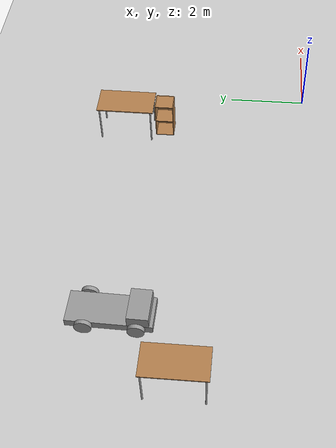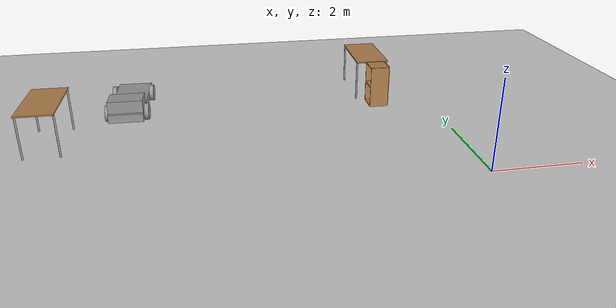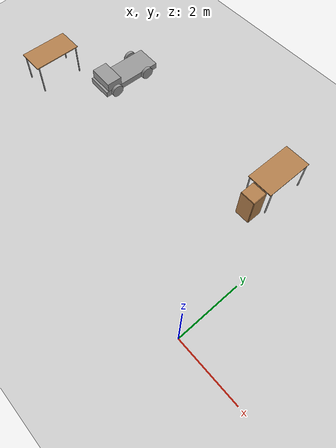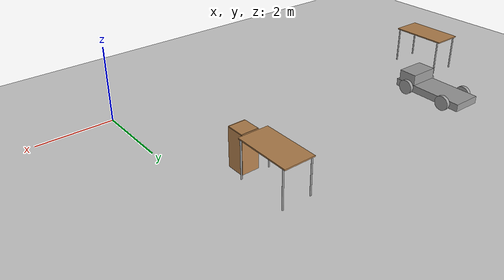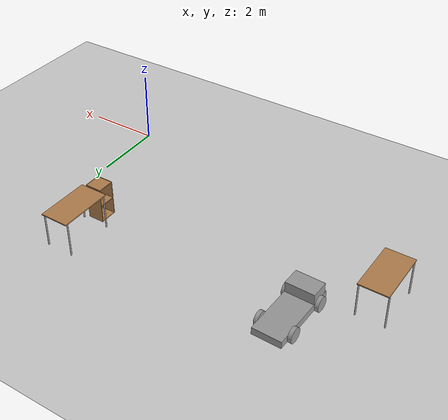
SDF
<sdf version="1.6">
 <world name="default">
  <model name="ground_plane">
   <static>1</static>
   <link name="link">
    <collision name="collision">
     <geometry><plane><normal>0 0 1</normal><size>100 100</size></plane></geometry>
     <surface><friction><ode><mu>100</mu><mu2>50</mu2></ode></friction></surface>
    </collision>
    <visual name="visual">
     <cast_shadows>0</cast_shadows>
     <geometry><plane><normal>0 0 1</normal><size>100 100</size></plane></geometry>
     <material>
      <script><uri>file://media/materials/scripts/gazebo.material</uri><name>Gazebo/Grey</name></script>
     </material>
    </visual>
   </link>
  </model>
  <model name="table">
   <static>1</static>
   <link name="link">
    <collision name="surface">
     <pose>0 0 1 0 -0 0</pose>
     <geometry><box><size>1.5 0.8 0.03</size></box></geometry>
     <surface><friction><ode><mu>0.6</mu><mu2>0.6</mu2></ode></friction></surface>
    </collision>
    <visual name="visual1">
     <pose>0 0 1 0 -0 0</pose>
     <geometry><box><size>1.5 0.8 0.03</size></box></geometry>
     <material>
      <script><uri>file://media/materials/scripts/gazebo.material</uri><name>Gazebo/Wood</name></script>
     </material>
    </visual>
    <collision name="front_left_leg">
     <pose>0.68 0.38 0.5 0 -0 0</pose>
     <geometry><cylinder><radius>0.02</radius><length>1</length></cylinder></geometry>
    </collision>
    <visual name="front_left_leg">
     <pose>0.68 0.38 0.5 0 -0 0</pose>
     <geometry><cylinder><radius>0.02</radius><length>1</length></cylinder></geometry>
     <material>
      <script><uri>file://media/materials/scripts/gazebo.material</uri><name>Gazebo/Grey</name></script>
     </material>
    </visual>
    <collision name="front_right_leg">
     <pose>0.68 -0.38 0.5 0 -0 0</pose>
     <geometry><cylinder><radius>0.02</radius><length>1</length></cylinder></geometry>
    </collision>
    <visual name="front_right_leg">
     <pose>0.68 -0.38 0.5 0 -0 0</pose>
     <geometry><cylinder><radius>0.02</radius><length>1</length></cylinder></geometry>
     <material>
      <script><uri>file://media/materials/scripts/gazebo.material</uri><name>Gazebo/Grey</name></script>
     </material>
    </visual>
    <collision name="back_right_leg">
     <pose>-0.68 -0.38 0.5 0 -0 0</pose>
     <geometry><cylinder><radius>0.02</radius><length>1</length></cylinder></geometry>
    </collision>
    <visual name="back_right_leg">
     <pose>-0.68 -0.38 0.5 0 -0 0</pose>
     <geometry><cylinder><radius>0.02</radius><length>1</length></cylinder></geometry>
     <material>
      <script><uri>file://media/materials/scripts/gazebo.material</uri><name>Gazebo/Grey</name></script>
     </material>
    </visual>
    <collision name="back_left_leg">
     <pose>-0.68 0.38 0.5 0 -0 0</pose>
     <geometry><cylinder><radius>0.02</radius><length>1</length></cylinder></geometry>
    </collision>
    <visual name="back_left_leg">
     <pose>-0.68 0.38 0.5 0 -0 0</pose>
     <geometry><cylinder><radius>0.02</radius><length>1</length></cylinder></geometry>
     <material>
      <script><uri>file://media/materials/scripts/gazebo.material</uri><name>Gazebo/Grey</name></script>
     </material>
    </visual>
   </link>
   <pose>-1.36641 4.79092 0 0 0 -1.57662</pose>
  </model>
  <model name="table_clone_0">
   <static>1</static>
   <link name="link">
    <collision name="surface">
     <pose>0 0 1 0 -0 0</pose>
     <geometry><box><size>1.5 0.8 0.03</size></box></geometry>
     <surface><friction><ode><mu>0.6</mu><mu2>0.6</mu2></ode></friction></surface>
    </collision>
    <visual name="visual1">
     <pose>0 0 1 0 -0 0</pose>
     <geometry><box><size>1.5 0.8 0.03</size></box></geometry>
     <material>
      <script><uri>file://media/materials/scripts/gazebo.material</uri><name>Gazebo/Wood</name></script>
     </material>
    </visual>
    <collision name="front_left_leg">
     <pose>0.68 0.38 0.5 0 -0 0</pose>
     <geometry><cylinder><radius>0.02</radius><length>1</length></cylinder></geometry>
    </collision>
    <visual name="front_left_leg">
     <pose>0.68 0.38 0.5 0 -0 0</pose>
     <geometry><cylinder><radius>0.02</radius><length>1</length></cylinder></geometry>
     <material>
      <script><uri>file://media/materials/scripts/gazebo.material</uri><name>Gazebo/Grey</name></script>
     </material>
    </visual>
    <collision name="front_right_leg">
     <pose>0.68 -0.38 0.5 0 -0 0</pose>
     <geometry><cylinder><radius>0.02</radius><length>1</length></cylinder></geometry>
    </collision>
    <visual name="front_right_leg">
     <pose>0.68 -0.38 0.5 0 -0 0</pose>
     <geometry><cylinder><radius>0.02</radius><length>1</length></cylinder></geometry>
     <material>
      <script><uri>file://media/materials/scripts/gazebo.material</uri><name>Gazebo/Grey</name></script>
     </material>
    </visual>
    <collision name="back_right_leg">
     <pose>-0.68 -0.38 0.5 0 -0 0</pose>
     <geometry><cylinder><radius>0.02</radius><length>1</length></cylinder></geometry>
    </collision>
    <visual name="back_right_leg">
     <pose>-0.68 -0.38 0.5 0 -0 0</pose>
     <geometry><cylinder><radius>0.02</radius><length>1</length></cylinder></geometry>
     <material>
      <script><uri>file://media/materials/scripts/gazebo.material</uri><name>Gazebo/Grey</name></script>
     </material>
    </visual>
    <collision name="back_left_leg">
     <pose>-0.68 0.38 0.5 0 -0 0</pose>
     <geometry><cylinder><radius>0.02</radius><length>1</length></cylinder></geometry>
    </collision>
    <visual name="back_left_leg">
     <pose>-0.68 0.38 0.5 0 -0 0</pose>
     <geometry><cylinder><radius>0.02</radius><length>1</length></cylinder></geometry>
     <material>
      <script><uri>file://media/materials/scripts/gazebo.material</uri><name>Gazebo/Grey</name></script>
     </material>
    </visual>
   </link>
   <pose>-9.02047 2.75404 0 0 0 -1.57662</pose>
  </model>
  <model name="miniTruck_0">
   <link name="link_0">
    <pose>0.132505 7.5e-05 0.142204 0 -0 0</pose>
    <inertial>
     <mass>1.05911</mass>
     <inertia>
      <ixx>0.187261</ixx>
      <ixy>0</ixy>
      <ixz>0</ixz>
      <iyy>0.176519</iyy>
      <iyz>0</iyz>
      <izz>0.187261</izz>
     </inertia>
    </inertial>
    <visual name="visual">
     <pose>0 0 -0.3 0 -0 0</pose>
     <geometry><box><size>2 0.8 0.2</size></box></geometry>
     <material>
      <lighting>1</lighting>
      <script><uri>file://media/materials/scripts/gazebo.material</uri><name>Gazebo/Grey</name></script>
      <shader type="pixel"><normal_map>__default__</normal_map></shader>
      <ambient>0.3 0.3 0.3 1</ambient>
      <diffuse>0.7 0.7 0.7 1</diffuse>
      <specular>0.01 0.01 0.01 1</specular>
      <emissive>0 0 0 1</emissive>
     </material>
    </visual>
    <collision name="collision">
     <pose>0 0 -0.3 0 -0 0</pose>
     <geometry><box><size>2 0.8 0.2</size></box></geometry>
     <surface>
      <friction>
       <ode><mu>1</mu><mu2>1</mu2><fdir1>0 0 0</fdir1><slip1>0</slip1><slip2>0</slip2></ode>
       <torsional>
        <coefficient>1</coefficient>
        <patch_radius>0</patch_radius>
        <surface_radius>0</surface_radius>
        <use_patch_radius>1</use_patch_radius>
        <ode><slip>0</slip></ode>
       </torsional>
      </friction>
      <bounce><restitution_coefficient>0</restitution_coefficient><threshold>1e+06</threshold></bounce>
      <contact>
       <collide_without_contact>0</collide_without_contact>
       <collide_without_contact_bitmask>1</collide_without_contact_bitmask>
       <collide_bitmask>1</collide_bitmask>
       <ode>
        <soft_cfm>0</soft_cfm>
        <soft_erp>0.2</soft_erp>
        <kp>1e+13</kp>
        <kd>1</kd>
        <max_vel>0.01</max_vel>
        <min_depth>0</min_depth>
       </ode>
       <bullet>
        <split_impulse>1</split_impulse>
        <split_impulse_penetration_threshold>-0.01</split_impulse_penetration_threshold>
        <soft_cfm>0</soft_cfm>
        <soft_erp>0.2</soft_erp>
        <kp>1e+13</kp>
        <kd>1</kd>
       </bullet>
      </contact>
     </surface>
    </collision>
   </link>
   <link name="link_1_clone">
    <pose>0.69925 -0.450265 -0.057531 -1.56965 0 0</pose>
    <inertial>
     <mass>1</mass>
     <inertia><ixx>0.145833</ixx><ixy>0</ixy><ixz>0</ixz><iyy>0.145833</iyy><iyz>0</iyz><izz>0.125</izz></inertia>
    </inertial>
    <visual name="visual">
     <pose>0 0.1 0 0 -0 0</pose>
     <geometry><cylinder><radius>0.2</radius><length>0.1</length></cylinder></geometry>
     <material>
      <lighting>1</lighting>
      <script><uri>file://media/materials/scripts/gazebo.material</uri><name>Gazebo/Grey</name></script>
      <shader type="pixel"><normal_map>__default__</normal_map></shader>
      <ambient>0.3 0.3 0.3 1</ambient>
      <diffuse>0.7 0.7 0.7 1</diffuse>
      <specular>0.01 0.01 0.01 1</specular>
      <emissive>0 0 0 1</emissive>
     </material>
    </visual>
    <collision name="collision">
     <pose>0 0.1 0 0 -0 0</pose>
     <geometry><cylinder><radius>0.2</radius><length>0.1</length></cylinder></geometry>
     <surface>
      <friction>
       <ode><mu>1</mu><mu2>1</mu2><fdir1>0 0 0</fdir1><slip1>0</slip1><slip2>0</slip2></ode>
       <torsional>
        <coefficient>1</coefficient>
        <patch_radius>0</patch_radius>
        <surface_radius>0</surface_radius>
        <use_patch_radius>1</use_patch_radius>
        <ode><slip>0</slip></ode>
       </torsional>
      </friction>
      <bounce><restitution_coefficient>0</restitution_coefficient><threshold>1e+06</threshold></bounce>
      <contact>
       <collide_without_contact>0</collide_without_contact>
       <collide_without_contact_bitmask>1</collide_without_contact_bitmask>
       <collide_bitmask>1</collide_bitmask>
       <ode>
        <soft_cfm>0</soft_cfm>
        <soft_erp>0.2</soft_erp>
        <kp>1e+13</kp>
        <kd>1</kd>
        <max_vel>0.01</max_vel>
        <min_depth>0</min_depth>
       </ode>
       <bullet>
        <split_impulse>1</split_impulse>
        <split_impulse_penetration_threshold>-0.01</split_impulse_penetration_threshold>
        <soft_cfm>0</soft_cfm>
        <soft_erp>0.2</soft_erp>
        <kp>1e+13</kp>
        <kd>1</kd>
       </bullet>
      </contact>
     </surface>
    </collision>
   </link>
   <link name="link_1_clone_clone">
    <pose>-0.497225 0.45019 -0.057531 -1.56965 0 0</pose>
    <inertial>
     <mass>1</mass>
     <inertia><ixx>0.145833</ixx><ixy>0</ixy><ixz>0</ixz><iyy>0.145833</iyy><iyz>0</iyz><izz>0.125</izz></inertia>
    </inertial>
    <visual name="visual">
     <pose>0 0.1 0 0 -0 0</pose>
     <geometry><cylinder><radius>0.2</radius><length>0.1</length></cylinder></geometry>
     <material>
      <lighting>1</lighting>
      <script><uri>file://media/materials/scripts/gazebo.material</uri><name>Gazebo/Grey</name></script>
      <shader type="pixel"><normal_map>__default__</normal_map></shader>
      <ambient>0.3 0.3 0.3 1</ambient>
      <diffuse>0.7 0.7 0.7 1</diffuse>
      <specular>0.01 0.01 0.01 1</specular>
      <emissive>0 0 0 1</emissive>
     </material>
    </visual>
    <collision name="collision">
     <pose>0 0.1 0 0 -0 0</pose>
     <geometry><cylinder><radius>0.2</radius><length>0.1</length></cylinder></geometry>
     <surface>
      <friction>
       <ode><mu>1</mu><mu2>1</mu2><fdir1>0 0 0</fdir1><slip1>0</slip1><slip2>0</slip2></ode>
       <torsional>
        <coefficient>1</coefficient>
        <patch_radius>0</patch_radius>
        <surface_radius>0</surface_radius>
        <use_patch_radius>1</use_patch_radius>
        <ode><slip>0</slip></ode>
       </torsional>
      </friction>
      <bounce><restitution_coefficient>0</restitution_coefficient><threshold>1e+06</threshold></bounce>
      <contact>
       <collide_without_contact>0</collide_without_contact>
       <collide_without_contact_bitmask>1</collide_without_contact_bitmask>
       <collide_bitmask>1</collide_bitmask>
       <ode>
        <soft_cfm>0</soft_cfm>
        <soft_erp>0.2</soft_erp>
        <kp>1e+13</kp>
        <kd>1</kd>
        <max_vel>0.01</max_vel>
        <min_depth>0</min_depth>
       </ode>
       <bullet>
        <split_impulse>1</split_impulse>
        <split_impulse_penetration_threshold>-0.01</split_impulse_penetration_threshold>
        <soft_cfm>0</soft_cfm>
        <soft_erp>0.2</soft_erp>
        <kp>1e+13</kp>
        <kd>1</kd>
       </bullet>
      </contact>
     </surface>
    </collision>
   </link>
   <link name="link_1_clone_clone_0">
    <pose>0.69925 0.45019 -0.057531 -1.56965 0 0</pose>
    <inertial>
     <mass>1</mass>
     <inertia><ixx>0.145833</ixx><ixy>0</ixy><ixz>0</ixz><iyy>0.145833</iyy><iyz>0</iyz><izz>0.125</izz></inertia>
    </inertial>
    <visual name="visual">
     <pose>0 0.1 0 0 -0 0</pose>
     <geometry><cylinder><radius>0.2</radius><length>0.1</length></cylinder></geometry>
     <material>
      <lighting>1</lighting>
      <script><uri>file://media/materials/scripts/gazebo.material</uri><name>Gazebo/Grey</name></script>
      <shader type="pixel"><normal_map>__default__</normal_map></shader>
      <ambient>0.3 0.3 0.3 1</ambient>
      <diffuse>0.7 0.7 0.7 1</diffuse>
      <specular>0.01 0.01 0.01 1</specular>
      <emissive>0 0 0 1</emissive>
     </material>
    </visual>
    <collision name="collision">
     <pose>0 0.1 0 0 -0 0</pose>
     <geometry><cylinder><radius>0.2</radius><length>0.1</length></cylinder></geometry>
     <surface>
      <friction>
       <ode><mu>1</mu><mu2>1</mu2><fdir1>0 0 0</fdir1><slip1>0</slip1><slip2>0</slip2></ode>
       <torsional>
        <coefficient>1</coefficient>
        <patch_radius>0</patch_radius>
        <surface_radius>0</surface_radius>
        <use_patch_radius>1</use_patch_radius>
        <ode><slip>0</slip></ode>
       </torsional>
      </friction>
      <bounce><restitution_coefficient>0</restitution_coefficient><threshold>1e+06</threshold></bounce>
      <contact>
       <collide_without_contact>0</collide_without_contact>
       <collide_without_contact_bitmask>1</collide_without_contact_bitmask>
       <collide_bitmask>1</collide_bitmask>
       <ode>
        <soft_cfm>0</soft_cfm>
        <soft_erp>0.2</soft_erp>
        <kp>1e+13</kp>
        <kd>1</kd>
        <max_vel>0.01</max_vel>
        <min_depth>0</min_depth>
       </ode>
       <bullet>
        <split_impulse>1</split_impulse>
        <split_impulse_penetration_threshold>-0.01</split_impulse_penetration_threshold>
        <soft_cfm>0</soft_cfm>
        <soft_erp>0.2</soft_erp>
        <kp>1e+13</kp>
        <kd>1</kd>
       </bullet>
      </contact>
     </surface>
    </collision>
   </link>
   <link name="link_1_clone_clone_1">
    <pose>-0.497225 -0.450265 -0.057531 -1.56965 0 0</pose>
    <inertial>
     <mass>1</mass>
     <inertia><ixx>0.145833</ixx><ixy>0</ixy><ixz>0</ixz><iyy>0.145833</iyy><iyz>0</iyz><izz>0.125</izz></inertia>
    </inertial>
    <visual name="visual">
     <pose>0 0.1 0 0 -0 0</pose>
     <geometry><cylinder><radius>0.2</radius><length>0.1</length></cylinder></geometry>
     <material>
      <lighting>1</lighting>
      <script><uri>file://media/materials/scripts/gazebo.material</uri><name>Gazebo/Grey</name></script>
      <shader type="pixel"><normal_map>__default__</normal_map></shader>
      <ambient>0.3 0.3 0.3 1</ambient>
      <diffuse>0.7 0.7 0.7 1</diffuse>
      <specular>0.01 0.01 0.01 1</specular>
      <emissive>0 0 0 1</emissive>
     </material>
    </visual>
    <collision name="collision">
     <pose>0 0.1 0 0 -0 0</pose>
     <geometry><cylinder><radius>0.2</radius><length>0.1</length></cylinder></geometry>
     <surface>
      <friction>
       <ode><mu>1</mu><mu2>1</mu2><fdir1>0 0 0</fdir1><slip1>0</slip1><slip2>0</slip2></ode>
       <torsional>
        <coefficient>1</coefficient>
        <patch_radius>0</patch_radius>
        <surface_radius>0</surface_radius>
        <use_patch_radius>1</use_patch_radius>
        <ode><slip>0</slip></ode>
       </torsional>
      </friction>
      <bounce><restitution_coefficient>0</restitution_coefficient><threshold>1e+06</threshold></bounce>
      <contact>
       <collide_without_contact>0</collide_without_contact>
       <collide_without_contact_bitmask>1</collide_without_contact_bitmask>
       <collide_bitmask>1</collide_bitmask>
       <ode>
        <soft_cfm>0</soft_cfm>
        <soft_erp>0.2</soft_erp>
        <kp>1e+13</kp>
        <kd>1</kd>
        <max_vel>0.01</max_vel>
        <min_depth>0</min_depth>
       </ode>
       <bullet>
        <split_impulse>1</split_impulse>
        <split_impulse_penetration_threshold>-0.01</split_impulse_penetration_threshold>
        <soft_cfm>0</soft_cfm>
        <soft_erp>0.2</soft_erp>
        <kp>1e+13</kp>
        <kd>1</kd>
       </bullet>
      </contact>
     </surface>
    </collision>
   </link>
   <link name="link_2">
    <pose>-0.536555 7.5e-05 0.08792 0 -0 0</pose>
    <inertial>
     <mass>1</mass>
     <inertia>
      <ixx>0.166667</ixx>
      <ixy>0</ixy>
      <ixz>0</ixz>
      <iyy>0.166667</iyy>
      <iyz>0</iyz>
      <izz>0.166667</izz>
     </inertia>
    </inertial>
    <visual name="visual">
     <geometry><box><size>0.5 0.8 0.3</size></box></geometry>
     <material>
      <lighting>1</lighting>
      <script><uri>file://media/materials/scripts/gazebo.material</uri><name>Gazebo/Grey</name></script>
      <shader type="pixel"><normal_map>__default__</normal_map></shader>
      <ambient>0.3 0.3 0.3 1</ambient>
      <diffuse>0.7 0.7 0.7 1</diffuse>
      <specular>0.01 0.01 0.01 1</specular>
      <emissive>0 0 0 1</emissive>
     </material>
    </visual>
    <collision name="collision">
     <geometry><box><size>0.5 0.8 0.3</size></box></geometry>
     <surface>
      <friction>
       <ode><mu>1</mu><mu2>1</mu2><fdir1>0 0 0</fdir1><slip1>0</slip1><slip2>0</slip2></ode>
       <torsional>
        <coefficient>1</coefficient>
        <patch_radius>0</patch_radius>
        <surface_radius>0</surface_radius>
        <use_patch_radius>1</use_patch_radius>
        <ode><slip>0</slip></ode>
       </torsional>
      </friction>
      <bounce><restitution_coefficient>0</restitution_coefficient><threshold>1e+06</threshold></bounce>
      <contact>
       <collide_without_contact>0</collide_without_contact>
       <collide_without_contact_bitmask>1</collide_without_contact_bitmask>
       <collide_bitmask>1</collide_bitmask>
       <ode>
        <soft_cfm>0</soft_cfm>
        <soft_erp>0.2</soft_erp>
        <kp>1e+13</kp>
        <kd>1</kd>
        <max_vel>0.01</max_vel>
        <min_depth>0</min_depth>
       </ode>
       <bullet>
        <split_impulse>1</split_impulse>
        <split_impulse_penetration_threshold>-0.01</split_impulse_penetration_threshold>
        <soft_cfm>0</soft_cfm>
        <soft_erp>0.2</soft_erp>
        <kp>1e+13</kp>
        <kd>1</kd>
       </bullet>
      </contact>
     </surface>
    </collision>
   </link>
   <joint name="link_0_JOINT_0" type="revolute">
    <parent>link_0</parent>
    <child>link_1_clone</child>
    <axis>
     <xyz>1 0 0</xyz>
     <use_parent_model_frame>0</use_parent_model_frame>
     <limit>
      <lower>-1.79769e+308</lower>
      <upper>1.79769e+308</upper>
      <effort>-1</effort>
      <velocity>-1</velocity>
     </limit>
     <dynamics>
      <spring_reference>0</spring_reference>
      <spring_stiffness>0</spring_stiffness>
      <damping>0</damping>
      <friction>0</friction>
     </dynamics>
    </axis>
    <physics>
     <ode><limit><cfm>0</cfm><erp>0.2</erp></limit><suspension><cfm>0</cfm><erp>0.2</erp></suspension></ode>
    </physics>
   </joint>
   <joint name="link_0_JOINT_1" type="revolute">
    <parent>link_0</parent>
    <child>link_1_clone_clone_0</child>
    <axis>
     <xyz>1 0 0</xyz>
     <use_parent_model_frame>0</use_parent_model_frame>
     <limit>
      <lower>-1.79769e+308</lower>
      <upper>1.79769e+308</upper>
      <effort>-1</effort>
      <velocity>-1</velocity>
     </limit>
     <dynamics>
      <spring_reference>0</spring_reference>
      <spring_stiffness>0</spring_stiffness>
      <damping>0</damping>
      <friction>0</friction>
     </dynamics>
    </axis>
    <physics>
     <ode><limit><cfm>0</cfm><erp>0.2</erp></limit><suspension><cfm>0</cfm><erp>0.2</erp></suspension></ode>
    </physics>
   </joint>
   <joint name="link_0_JOINT_3" type="revolute">
    <parent>link_0</parent>
    <child>link_1_clone_clone</child>
    <axis>
     <xyz>1 0 0</xyz>
     <use_parent_model_frame>0</use_parent_model_frame>
     <limit>
      <lower>-1.79769e+308</lower>
      <upper>1.79769e+308</upper>
      <effort>-1</effort>
      <velocity>-1</velocity>
     </limit>
     <dynamics>
      <spring_reference>0</spring_reference>
      <spring_stiffness>0</spring_stiffness>
      <damping>0</damping>
     </dynamics>
    </axis>
    <physics>
     <ode><limit><cfm>0</cfm><erp>0.2</erp></limit><suspension><cfm>0</cfm><erp>0.2</erp></suspension></ode>
    </physics>
   </joint>
   <joint name="link_0_JOINT_6" type="revolute">
    <parent>link_0</parent>
    <child>link_1_clone_clone_1</child>
    <axis>
     <xyz>1 0 0</xyz>
     <use_parent_model_frame>0</use_parent_model_frame>
     <limit>
      <lower>-1.79769e+308</lower>
      <upper>1.79769e+308</upper>
      <effort>-1</effort>
      <velocity>-1</velocity>
     </limit>
     <dynamics>
      <spring_reference>0</spring_reference>
      <spring_stiffness>0</spring_stiffness>
      <damping>0</damping>
     </dynamics>
    </axis>
    <physics>
     <ode><limit><cfm>0</cfm><erp>0.2</erp></limit><suspension><cfm>0</cfm><erp>0.2</erp></suspension></ode>
    </physics>
   </joint>
   <joint name="link_0_JOINT_8" type="fixed">
    <parent>link_0</parent>
    <child>link_2</child>
    <physics>
     <ode><limit><cfm>0</cfm><erp>0.2</erp></limit><suspension><cfm>0</cfm><erp>0.2</erp></suspension></ode>
    </physics>
   </joint>
   <static>0</static>
   <pose>-7.42409 4.23835 0.357528 0 -5e-06 1.54536</pose>
  </model>
  <model name="cabinet_0">
   <static>1</static>
   <link name="cabinet_bottom_plate">
    <inertial>
     <pose>0 0 -1 0 -0 0</pose>
     <inertia><ixx>2.05</ixx><ixy>0</ixy><ixz>0</ixz><iyy>2.05</iyy><iyz>0</iyz><izz>2.05</izz></inertia>
     <mass>25</mass>
    </inertial>
    <collision name="cabinet_bottom_plate_geom">
     <pose>0 0 0.01 0 -0 0</pose>
     <geometry><box><size>0.45 0.45 0.02</size></box></geometry>
    </collision>
    <visual name="cabinet_bottom_plate_geom_visual">
     <pose>0 0 0.01 0 -0 0</pose>
     <geometry><box><size>0.45 0.45 0.02</size></box></geometry>
     <material>
      <script><uri>file://media/materials/scripts/gazebo.material</uri><name>Gazebo/Wood</name></script>
     </material>
    </visual>
    <collision name="cabinet_bottom_plate_geom_cabinet_back_plate">
     <pose>0.235 0 0.51 0 -0 0</pose>
     <geometry><box><size>0.02 0.45 1.02</size></box></geometry>
    </collision>
    <visual name="cabinet_bottom_plate_geom_cabinet_back_plate_visual">
     <pose>0.235 0 0.51 0 -0 0</pose>
     <geometry><box><size>0.02 0.45 1.02</size></box></geometry>
     <material>
      <script><uri>file://media/materials/scripts/gazebo.material</uri><name>Gazebo/Wood</name></script>
     </material>
    </visual>
    <collision name="cabinet_bottom_plate_geom_cabinet_left_plate">
     <pose>0 0.235 0.51 0 -0 0</pose>
     <geometry><box><size>0.45 0.02 1.02</size></box></geometry>
    </collision>
    <visual name="cabinet_bottom_plate_geom_cabinet_left_plate_visual">
     <pose>0 0.235 0.51 0 -0 0</pose>
     <geometry><box><size>0.45 0.02 1.02</size></box></geometry>
     <material>
      <script><uri>file://media/materials/scripts/gazebo.material</uri><name>Gazebo/Wood</name></script>
     </material>
    </visual>
    <collision name="cabinet_bottom_plate_geom_cabinet_middle_plate">
     <pose>0 0 0.51 0 -0 0</pose>
     <geometry><box><size>0.45 0.45 0.02</size></box></geometry>
    </collision>
    <visual name="cabinet_bottom_plate_geom_cabinet_middle_plate_visual">
     <pose>0 0 0.51 0 -0 0</pose>
     <geometry><box><size>0.45 0.45 0.02</size></box></geometry>
     <material>
      <script><uri>file://media/materials/scripts/gazebo.material</uri><name>Gazebo/Wood</name></script>
     </material>
    </visual>
    <collision name="cabinet_bottom_plate_geom_cabinet_right_plate">
     <pose>0 -0.235 0.51 0 -0 0</pose>
     <geometry><box><size>0.45 0.02 1.02</size></box></geometry>
    </collision>
    <visual name="cabinet_bottom_plate_geom_cabinet_right_plate_visual">
     <pose>0 -0.235 0.51 0 -0 0</pose>
     <geometry><box><size>0.45 0.02 1.02</size></box></geometry>
     <material>
      <script><uri>file://media/materials/scripts/gazebo.material</uri><name>Gazebo/Wood</name></script>
     </material>
    </visual>
    <collision name="cabinet_bottom_plate_geom_cabinet_top_plate">
     <pose>0 0 1.01 0 -0 0</pose>
     <geometry><box><size>0.45 0.45 0.02</size></box></geometry>
    </collision>
    <visual name="cabinet_bottom_plate_geom_cabinet_top_plate_visual">
     <pose>0 0 1.01 0 -0 0</pose>
     <geometry><box><size>0.45 0.45 0.02</size></box></geometry>
     <material>
      <script><uri>file://media/materials/scripts/gazebo.material</uri><name>Gazebo/Wood</name></script>
     </material>
    </visual>
   </link>
   <pose>-1.31861 3.76839 0 0 -0 0</pose>
  </model>
 </world>
</sdf>
